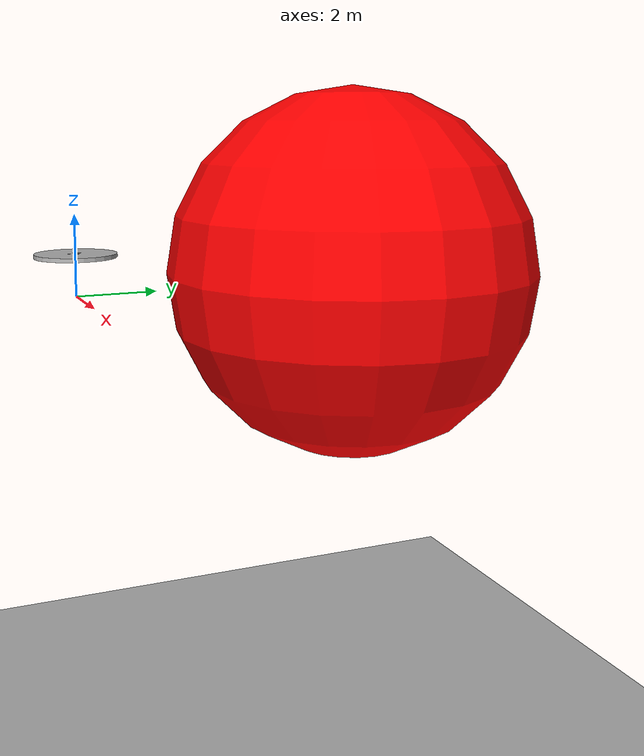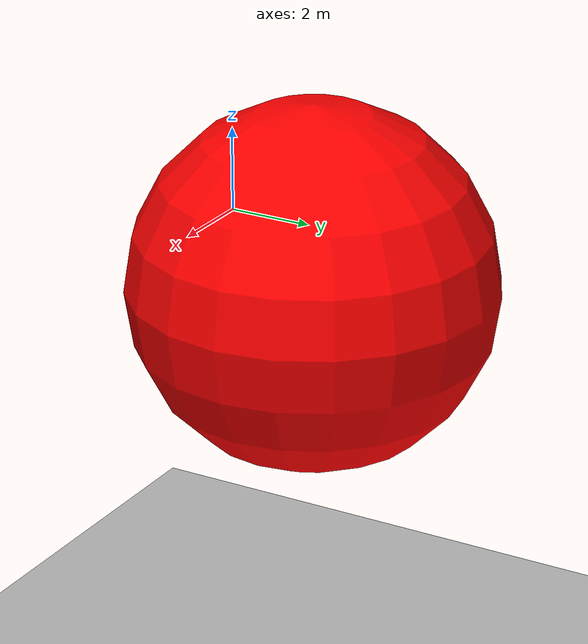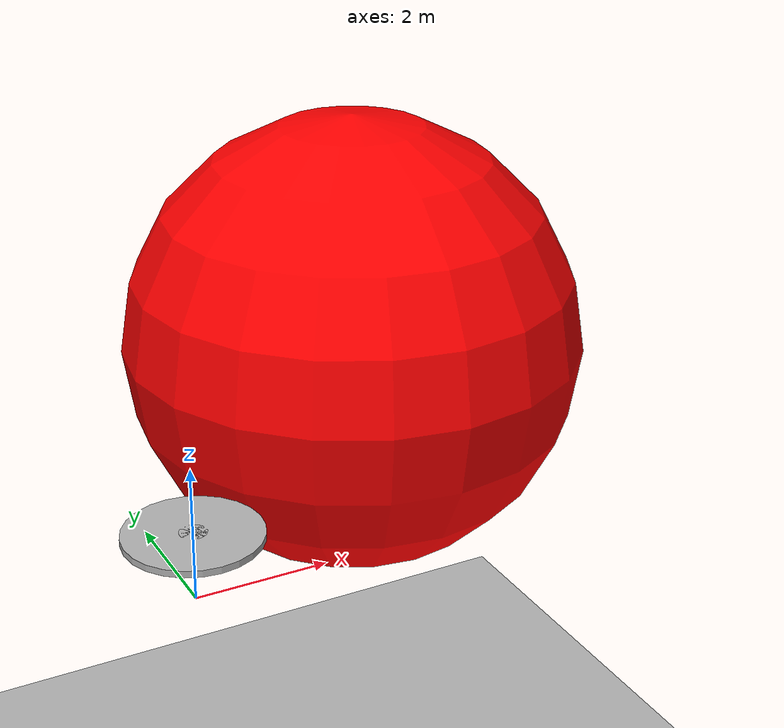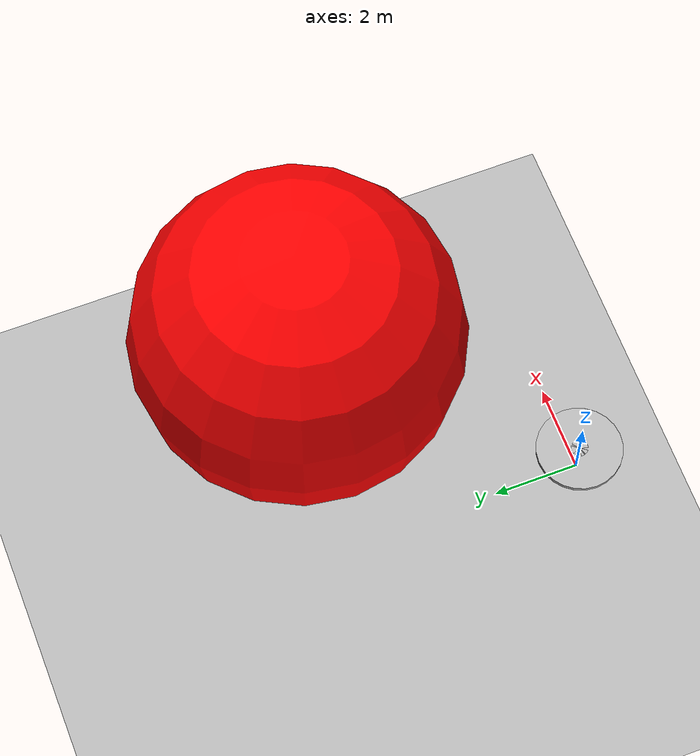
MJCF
<mujoco>
  <option gravity="0 0 -9.81" />
  <worldbody>

    <body name="object_1" pos="0 0 1">
      <geom type="cylinder" size="1 0.05" density="1" rgba="0.7 0.7 0.7 1" />
      <joint name="object_1_joint" type="free" />
    </body>

    <body name="object_2" pos="0 0 1">
      <geom type="cylinder" size="0.2 0.05" rgba="0.7 0.7 0.7 1" />
    </body>

    <body name="object_3" pos="-10 0 -10">
      <geom type="plane" size="25 25 0.1" rgba="0.7 0.7 0.7 1" friction="1 1 1" />
    </body>
  <body name="disc_small" pos="5.0 5.0 1.0"><geom type="sphere" size="4.0" rgba="1.0 0.0 0.0 1.0" /></body></worldbody>
</mujoco>
